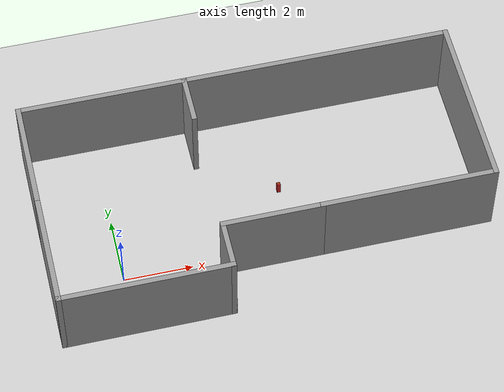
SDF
<sdf version="1.6">
 <world name="default">
  <light name="sun" type="directional">
   <pose>0 0 10 0 -0 0</pose>
   <diffuse>0.8 0.8 0.8 1</diffuse>
   <specular>0.2 0.2 0.2 1</specular>
   <attenuation>
    <range>1000</range>
    <constant>0.9</constant>
    <linear>0.01</linear>
    <quadratic>0.001</quadratic>
   </attenuation>
   <direction>-0.5 0.1 -0.9</direction>
  </light>
  <model name="ground_plane">
   <static>1</static>
   <link name="link">
    <collision name="collision">
     <geometry><plane><normal>0 0 1</normal><size>100 100</size></plane></geometry>
     <surface>
      <contact><collide_bitmask>65535</collide_bitmask></contact>
      <friction><ode><mu>100</mu><mu2>50</mu2></ode></friction>
     </surface>
    </collision>
    <visual name="visual">
     <cast_shadows>0</cast_shadows>
     <geometry><plane><normal>0 0 1</normal><size>100 100</size></plane></geometry>
     <material>
      <script><uri>file://media/materials/scripts/gazebo.material</uri><name>Gazebo/Grey</name></script>
     </material>
    </visual>
   </link>
  </model>
  <gravity>0 0 -9.8</gravity>
  <magnetic_field>6e-06 2.3e-05 -4.2e-05</magnetic_field>
  <atmosphere type="adiabatic"/>
  <physics name="default_physics" default="0" type="ode">
   <max_step_size>0.001</max_step_size>
   <real_time_factor>1</real_time_factor>
   <real_time_update_rate>1000</real_time_update_rate>
  </physics>
  <scene><ambient>0.4 0.4 0.4 1</ambient><background>0.7 0.7 0.7 1</background><shadows>1</shadows></scene>
  <spherical_coordinates>
   <surface_model>EARTH_WGS84</surface_model>
   <latitude_deg>0</latitude_deg>
   <longitude_deg>0</longitude_deg>
   <elevation>0</elevation>
   <heading_deg>0</heading_deg>
  </spherical_coordinates>
  <audio><device>default</device></audio>
  <model name="my_room.sdf">
   <link name="Wall_10">
    <pose>-1.5 -2.55 0 0 -0 1.5708</pose>
    <visual name="Wall_10_Visual">
     <pose>0 0 1.25 0 -0 0</pose>
     <geometry><box><size>1.5 0.15 2.5</size></box></geometry>
     <material>
      <script><uri>file://media/materials/scripts/gazebo.material</uri><name>Gazebo/Grey</name></script>
      <ambient>1 1 1 1</ambient>
     </material>
     <meta><layer>0</layer></meta>
    </visual>
    <collision name="Wall_10_Collision">
     <pose>0 0 1.25 0 -0 0</pose>
     <geometry><box><size>1.5 0.15 2.5</size></box></geometry>
     <surface>
      <friction>
       <ode><mu>1</mu><mu2>1</mu2><fdir1>0 0 0</fdir1><slip1>0</slip1><slip2>0</slip2></ode>
       <torsional>
        <coefficient>1</coefficient>
        <patch_radius>0</patch_radius>
        <surface_radius>0</surface_radius>
        <use_patch_radius>1</use_patch_radius>
        <ode><slip>0</slip></ode>
       </torsional>
      </friction>
      <bounce><restitution_coefficient>0</restitution_coefficient><threshold>1e+06</threshold></bounce>
      <contact>
       <collide_without_contact>0</collide_without_contact>
       <collide_without_contact_bitmask>1</collide_without_contact_bitmask>
       <collide_bitmask>1</collide_bitmask>
       <ode>
        <soft_cfm>0</soft_cfm>
        <soft_erp>0.2</soft_erp>
        <kp>1e+13</kp>
        <kd>1</kd>
        <max_vel>0.01</max_vel>
        <min_depth>0</min_depth>
       </ode>
       <bullet>
        <split_impulse>1</split_impulse>
        <split_impulse_penetration_threshold>-0.01</split_impulse_penetration_threshold>
        <soft_cfm>0</soft_cfm>
        <soft_erp>0.2</soft_erp>
        <kp>1e+13</kp>
        <kd>1</kd>
       </bullet>
      </contact>
     </surface>
    </collision>
   </link>
   <link name="Wall_11">
    <pose>-0.075 -1.875 0 0 -0 0</pose>
    <visual name="Wall_11_Visual">
     <pose>0 0 1.25 0 -0 0</pose>
     <geometry><box><size>3 0.15 2.5</size></box></geometry>
     <material>
      <script><uri>file://media/materials/scripts/gazebo.material</uri><name>Gazebo/Grey</name></script>
      <ambient>1 1 1 1</ambient>
     </material>
     <meta><layer>0</layer></meta>
    </visual>
    <collision name="Wall_11_Collision">
     <pose>0 0 1.25 0 -0 0</pose>
     <geometry><box><size>3 0.15 2.5</size></box></geometry>
     <surface>
      <friction>
       <ode><mu>1</mu><mu2>1</mu2><fdir1>0 0 0</fdir1><slip1>0</slip1><slip2>0</slip2></ode>
       <torsional>
        <coefficient>1</coefficient>
        <patch_radius>0</patch_radius>
        <surface_radius>0</surface_radius>
        <use_patch_radius>1</use_patch_radius>
        <ode><slip>0</slip></ode>
       </torsional>
      </friction>
      <bounce><restitution_coefficient>0</restitution_coefficient><threshold>1e+06</threshold></bounce>
      <contact>
       <collide_without_contact>0</collide_without_contact>
       <collide_without_contact_bitmask>1</collide_without_contact_bitmask>
       <collide_bitmask>1</collide_bitmask>
       <ode>
        <soft_cfm>0</soft_cfm>
        <soft_erp>0.2</soft_erp>
        <kp>1e+13</kp>
        <kd>1</kd>
        <max_vel>0.01</max_vel>
        <min_depth>0</min_depth>
       </ode>
       <bullet>
        <split_impulse>1</split_impulse>
        <split_impulse_penetration_threshold>-0.01</split_impulse_penetration_threshold>
        <soft_cfm>0</soft_cfm>
        <soft_erp>0.2</soft_erp>
        <kp>1e+13</kp>
        <kd>1</kd>
       </bullet>
      </contact>
     </surface>
    </collision>
   </link>
   <link name="Wall_34">
    <pose>-6.35 1.675 0 0 -0 1.5708</pose>
    <visual name="Wall_34_Visual">
     <pose>0 0 1.25 0 -0 0</pose>
     <geometry><box><size>3.25 0.15 2.5</size></box></geometry>
     <material>
      <script><uri>file://media/materials/scripts/gazebo.material</uri><name>Gazebo/Grey</name></script>
      <ambient>1 1 1 1</ambient>
     </material>
     <meta><layer>0</layer></meta>
    </visual>
    <collision name="Wall_34_Collision">
     <pose>0 0 1.25 0 -0 0</pose>
     <geometry><box><size>3.25 0.15 2.5</size></box></geometry>
     <surface>
      <friction>
       <ode><mu>1</mu><mu2>1</mu2><fdir1>0 0 0</fdir1><slip1>0</slip1><slip2>0</slip2></ode>
       <torsional>
        <coefficient>1</coefficient>
        <patch_radius>0</patch_radius>
        <surface_radius>0</surface_radius>
        <use_patch_radius>1</use_patch_radius>
        <ode><slip>0</slip></ode>
       </torsional>
      </friction>
      <bounce><restitution_coefficient>0</restitution_coefficient><threshold>1e+06</threshold></bounce>
      <contact>
       <collide_without_contact>0</collide_without_contact>
       <collide_without_contact_bitmask>1</collide_without_contact_bitmask>
       <collide_bitmask>1</collide_bitmask>
       <ode>
        <soft_cfm>0</soft_cfm>
        <soft_erp>0.2</soft_erp>
        <kp>1e+13</kp>
        <kd>1</kd>
        <max_vel>0.01</max_vel>
        <min_depth>0</min_depth>
       </ode>
       <bullet>
        <split_impulse>1</split_impulse>
        <split_impulse_penetration_threshold>-0.01</split_impulse_penetration_threshold>
        <soft_cfm>0</soft_cfm>
        <soft_erp>0.2</soft_erp>
        <kp>1e+13</kp>
        <kd>1</kd>
       </bullet>
      </contact>
     </surface>
    </collision>
   </link>
   <link name="Wall_35">
    <pose>-3.925 3.225 0 0 -0 0</pose>
    <visual name="Wall_35_Visual">
     <pose>0 0 1.25 0 -0 0</pose>
     <geometry><box><size>5 0.15 2.5</size></box></geometry>
     <material>
      <script><uri>file://media/materials/scripts/gazebo.material</uri><name>Gazebo/Grey</name></script>
      <ambient>1 1 1 1</ambient>
     </material>
     <meta><layer>0</layer></meta>
    </visual>
    <collision name="Wall_35_Collision">
     <pose>0 0 1.25 0 -0 0</pose>
     <geometry><box><size>5 0.15 2.5</size></box></geometry>
     <surface>
      <friction>
       <ode><mu>1</mu><mu2>1</mu2><fdir1>0 0 0</fdir1><slip1>0</slip1><slip2>0</slip2></ode>
       <torsional>
        <coefficient>1</coefficient>
        <patch_radius>0</patch_radius>
        <surface_radius>0</surface_radius>
        <use_patch_radius>1</use_patch_radius>
        <ode><slip>0</slip></ode>
       </torsional>
      </friction>
      <bounce><restitution_coefficient>0</restitution_coefficient><threshold>1e+06</threshold></bounce>
      <contact>
       <collide_without_contact>0</collide_without_contact>
       <collide_without_contact_bitmask>1</collide_without_contact_bitmask>
       <collide_bitmask>1</collide_bitmask>
       <ode>
        <soft_cfm>0</soft_cfm>
        <soft_erp>0.2</soft_erp>
        <kp>1e+13</kp>
        <kd>1</kd>
        <max_vel>0.01</max_vel>
        <min_depth>0</min_depth>
       </ode>
       <bullet>
        <split_impulse>1</split_impulse>
        <split_impulse_penetration_threshold>-0.01</split_impulse_penetration_threshold>
        <soft_cfm>0</soft_cfm>
        <soft_erp>0.2</soft_erp>
        <kp>1e+13</kp>
        <kd>1</kd>
       </bullet>
      </contact>
     </surface>
    </collision>
   </link>
   <link name="Wall_48">
    <pose>-1.5 2.55 0 0 0 -1.5708</pose>
    <visual name="Wall_48_Visual">
     <pose>0 0 1.25 0 -0 0</pose>
     <geometry><box><size>1.5 0.15 2.5</size></box></geometry>
     <material>
      <script><uri>file://media/materials/scripts/gazebo.material</uri><name>Gazebo/Grey</name></script>
      <ambient>1 1 1 1</ambient>
     </material>
     <meta><layer>0</layer></meta>
    </visual>
    <collision name="Wall_48_Collision">
     <pose>0 0 1.25 0 -0 0</pose>
     <geometry><box><size>1.5 0.15 2.5</size></box></geometry>
     <surface>
      <friction>
       <ode><mu>1</mu><mu2>1</mu2><fdir1>0 0 0</fdir1><slip1>0</slip1><slip2>0</slip2></ode>
       <torsional>
        <coefficient>1</coefficient>
        <patch_radius>0</patch_radius>
        <surface_radius>0</surface_radius>
        <use_patch_radius>1</use_patch_radius>
        <ode><slip>0</slip></ode>
       </torsional>
      </friction>
      <bounce><restitution_coefficient>0</restitution_coefficient><threshold>1e+06</threshold></bounce>
      <contact>
       <collide_without_contact>0</collide_without_contact>
       <collide_without_contact_bitmask>1</collide_without_contact_bitmask>
       <collide_bitmask>1</collide_bitmask>
       <ode>
        <soft_cfm>0</soft_cfm>
        <soft_erp>0.2</soft_erp>
        <kp>1e+13</kp>
        <kd>1</kd>
        <max_vel>0.01</max_vel>
        <min_depth>0</min_depth>
       </ode>
       <bullet>
        <split_impulse>1</split_impulse>
        <split_impulse_penetration_threshold>-0.01</split_impulse_penetration_threshold>
        <soft_cfm>0</soft_cfm>
        <soft_erp>0.2</soft_erp>
        <kp>1e+13</kp>
        <kd>1</kd>
       </bullet>
      </contact>
     </surface>
    </collision>
   </link>
   <link name="Wall_5">
    <pose>-3.925 -3.225 0 0 -0 0</pose>
    <visual name="Wall_5_Visual">
     <pose>0 0 1.25 0 -0 0</pose>
     <geometry><box><size>5 0.15 2.5</size></box></geometry>
     <material>
      <script><uri>file://media/materials/scripts/gazebo.material</uri><name>Gazebo/Grey</name></script>
      <ambient>1 1 1 1</ambient>
     </material>
     <meta><layer>0</layer></meta>
    </visual>
    <collision name="Wall_5_Collision">
     <pose>0 0 1.25 0 -0 0</pose>
     <geometry><box><size>5 0.15 2.5</size></box></geometry>
     <surface>
      <friction>
       <ode><mu>1</mu><mu2>1</mu2><fdir1>0 0 0</fdir1><slip1>0</slip1><slip2>0</slip2></ode>
       <torsional>
        <coefficient>1</coefficient>
        <patch_radius>0</patch_radius>
        <surface_radius>0</surface_radius>
        <use_patch_radius>1</use_patch_radius>
        <ode><slip>0</slip></ode>
       </torsional>
      </friction>
      <bounce><restitution_coefficient>0</restitution_coefficient><threshold>1e+06</threshold></bounce>
      <contact>
       <collide_without_contact>0</collide_without_contact>
       <collide_without_contact_bitmask>1</collide_without_contact_bitmask>
       <collide_bitmask>1</collide_bitmask>
       <ode>
        <soft_cfm>0</soft_cfm>
        <soft_erp>0.2</soft_erp>
        <kp>1e+13</kp>
        <kd>1</kd>
        <max_vel>0.01</max_vel>
        <min_depth>0</min_depth>
       </ode>
       <bullet>
        <split_impulse>1</split_impulse>
        <split_impulse_penetration_threshold>-0.01</split_impulse_penetration_threshold>
        <soft_cfm>0</soft_cfm>
        <soft_erp>0.2</soft_erp>
        <kp>1e+13</kp>
        <kd>1</kd>
       </bullet>
      </contact>
     </surface>
    </collision>
   </link>
   <link name="Wall_50">
    <pose>2.425 3.225 0 0 -0 0</pose>
    <visual name="Wall_50_Visual">
     <pose>0 0 1.25 0 -0 0</pose>
     <geometry><box><size>8 0.15 2.5</size></box></geometry>
     <material>
      <script><uri>file://media/materials/scripts/gazebo.material</uri><name>Gazebo/Grey</name></script>
      <ambient>1 1 1 1</ambient>
     </material>
     <meta><layer>0</layer></meta>
    </visual>
    <collision name="Wall_50_Collision">
     <pose>0 0 1.25 0 -0 0</pose>
     <geometry><box><size>8 0.15 2.5</size></box></geometry>
     <surface>
      <friction>
       <ode><mu>1</mu><mu2>1</mu2><fdir1>0 0 0</fdir1><slip1>0</slip1><slip2>0</slip2></ode>
       <torsional>
        <coefficient>1</coefficient>
        <patch_radius>0</patch_radius>
        <surface_radius>0</surface_radius>
        <use_patch_radius>1</use_patch_radius>
        <ode><slip>0</slip></ode>
       </torsional>
      </friction>
      <bounce><restitution_coefficient>0</restitution_coefficient><threshold>1e+06</threshold></bounce>
      <contact>
       <collide_without_contact>0</collide_without_contact>
       <collide_without_contact_bitmask>1</collide_without_contact_bitmask>
       <collide_bitmask>1</collide_bitmask>
       <ode>
        <soft_cfm>0</soft_cfm>
        <soft_erp>0.2</soft_erp>
        <kp>1e+13</kp>
        <kd>1</kd>
        <max_vel>0.01</max_vel>
        <min_depth>0</min_depth>
       </ode>
       <bullet>
        <split_impulse>1</split_impulse>
        <split_impulse_penetration_threshold>-0.01</split_impulse_penetration_threshold>
        <soft_cfm>0</soft_cfm>
        <soft_erp>0.2</soft_erp>
        <kp>1e+13</kp>
        <kd>1</kd>
       </bullet>
      </contact>
     </surface>
    </collision>
   </link>
   <link name="Wall_51">
    <pose>6.35 0.675 0 0 0 -1.5708</pose>
    <visual name="Wall_51_Visual">
     <pose>0 0 1.25 0 -0 0</pose>
     <geometry><box><size>5.25 0.15 2.5</size></box></geometry>
     <material>
      <script><uri>file://media/materials/scripts/gazebo.material</uri><name>Gazebo/Grey</name></script>
      <ambient>1 1 1 1</ambient>
     </material>
     <meta><layer>0</layer></meta>
    </visual>
    <collision name="Wall_51_Collision">
     <pose>0 0 1.25 0 -0 0</pose>
     <geometry><box><size>5.25 0.15 2.5</size></box></geometry>
     <surface>
      <friction>
       <ode><mu>1</mu><mu2>1</mu2><fdir1>0 0 0</fdir1><slip1>0</slip1><slip2>0</slip2></ode>
       <torsional>
        <coefficient>1</coefficient>
        <patch_radius>0</patch_radius>
        <surface_radius>0</surface_radius>
        <use_patch_radius>1</use_patch_radius>
        <ode><slip>0</slip></ode>
       </torsional>
      </friction>
      <bounce><restitution_coefficient>0</restitution_coefficient><threshold>1e+06</threshold></bounce>
      <contact>
       <collide_without_contact>0</collide_without_contact>
       <collide_without_contact_bitmask>1</collide_without_contact_bitmask>
       <collide_bitmask>1</collide_bitmask>
       <ode>
        <soft_cfm>0</soft_cfm>
        <soft_erp>0.2</soft_erp>
        <kp>1e+13</kp>
        <kd>1</kd>
        <max_vel>0.01</max_vel>
        <min_depth>0</min_depth>
       </ode>
       <bullet>
        <split_impulse>1</split_impulse>
        <split_impulse_penetration_threshold>-0.01</split_impulse_penetration_threshold>
        <soft_cfm>0</soft_cfm>
        <soft_erp>0.2</soft_erp>
        <kp>1e+13</kp>
        <kd>1</kd>
       </bullet>
      </contact>
     </surface>
    </collision>
   </link>
   <link name="Wall_52">
    <pose>3.85 -1.875 0 0 -0 3.14159</pose>
    <visual name="Wall_52_Visual">
     <pose>0 0 1.25 0 -0 0</pose>
     <geometry><box><size>5.15 0.15 2.5</size></box></geometry>
     <material>
      <script><uri>file://media/materials/scripts/gazebo.material</uri><name>Gazebo/Grey</name></script>
      <ambient>1 1 1 1</ambient>
     </material>
     <meta><layer>0</layer></meta>
    </visual>
    <collision name="Wall_52_Collision">
     <pose>0 0 1.25 0 -0 0</pose>
     <geometry><box><size>5.15 0.15 2.5</size></box></geometry>
     <surface>
      <friction>
       <ode><mu>1</mu><mu2>1</mu2><fdir1>0 0 0</fdir1><slip1>0</slip1><slip2>0</slip2></ode>
       <torsional>
        <coefficient>1</coefficient>
        <patch_radius>0</patch_radius>
        <surface_radius>0</surface_radius>
        <use_patch_radius>1</use_patch_radius>
        <ode><slip>0</slip></ode>
       </torsional>
      </friction>
      <bounce><restitution_coefficient>0</restitution_coefficient><threshold>1e+06</threshold></bounce>
      <contact>
       <collide_without_contact>0</collide_without_contact>
       <collide_without_contact_bitmask>1</collide_without_contact_bitmask>
       <collide_bitmask>1</collide_bitmask>
       <ode>
        <soft_cfm>0</soft_cfm>
        <soft_erp>0.2</soft_erp>
        <kp>1e+13</kp>
        <kd>1</kd>
        <max_vel>0.01</max_vel>
        <min_depth>0</min_depth>
       </ode>
       <bullet>
        <split_impulse>1</split_impulse>
        <split_impulse_penetration_threshold>-0.01</split_impulse_penetration_threshold>
        <soft_cfm>0</soft_cfm>
        <soft_erp>0.2</soft_erp>
        <kp>1e+13</kp>
        <kd>1</kd>
       </bullet>
      </contact>
     </surface>
    </collision>
   </link>
   <link name="Wall_7">
    <pose>-6.35 -1.55 0 0 -0 1.5708</pose>
    <visual name="Wall_7_Visual">
     <pose>0 0 1.25 0 -0 0</pose>
     <geometry><box><size>3.5 0.15 2.5</size></box></geometry>
     <material>
      <script><uri>file://media/materials/scripts/gazebo.material</uri><name>Gazebo/Grey</name></script>
      <ambient>1 1 1 1</ambient>
     </material>
     <meta><layer>0</layer></meta>
    </visual>
    <collision name="Wall_7_Collision">
     <pose>0 0 1.25 0 -0 0</pose>
     <geometry><box><size>3.5 0.15 2.5</size></box></geometry>
     <surface>
      <friction>
       <ode><mu>1</mu><mu2>1</mu2><fdir1>0 0 0</fdir1><slip1>0</slip1><slip2>0</slip2></ode>
       <torsional>
        <coefficient>1</coefficient>
        <patch_radius>0</patch_radius>
        <surface_radius>0</surface_radius>
        <use_patch_radius>1</use_patch_radius>
        <ode><slip>0</slip></ode>
       </torsional>
      </friction>
      <bounce><restitution_coefficient>0</restitution_coefficient><threshold>1e+06</threshold></bounce>
      <contact>
       <collide_without_contact>0</collide_without_contact>
       <collide_without_contact_bitmask>1</collide_without_contact_bitmask>
       <collide_bitmask>1</collide_bitmask>
       <ode>
        <soft_cfm>0</soft_cfm>
        <soft_erp>0.2</soft_erp>
        <kp>1e+13</kp>
        <kd>1</kd>
        <max_vel>0.01</max_vel>
        <min_depth>0</min_depth>
       </ode>
       <bullet>
        <split_impulse>1</split_impulse>
        <split_impulse_penetration_threshold>-0.01</split_impulse_penetration_threshold>
        <soft_cfm>0</soft_cfm>
        <soft_erp>0.2</soft_erp>
        <kp>1e+13</kp>
        <kd>1</kd>
       </bullet>
      </contact>
     </surface>
    </collision>
   </link>
   <static>1</static>
   <pose>4.33011 1.50571 0 0 -0 0</pose>
  </model>
  <model name="box_obstacle_0_0">
   <link name="link">
    <inertial>
     <mass>0.573211</mass>
     <inertia>
      <ixx>0.00496795</ixx>
      <ixy>0</ixy>
      <ixz>0</ixz>
      <iyy>0.00486656</iyy>
      <iyz>0</iyz>
      <izz>0.00123635</izz>
     </inertia>
    </inertial>
    <visual name="visual">
     <geometry><box><size>0.1 0.1 0.37</size></box></geometry>
     <material>
      <script><name>Gazebo/Red</name><uri>file://media/materials/scripts/gazebo.material</uri></script>
      <shader type="vertex"><normal_map>__default__</normal_map></shader>
      <ambient>1 0 0 1</ambient>
      <diffuse>0.7 0.7 0.7 1</diffuse>
      <specular>0.01 0.01 0.01 1</specular>
      <emissive>0 0 0 1</emissive>
     </material>
    </visual>
    <collision name="collision">
     <geometry><box><size>0.1 0.1 0.37</size></box></geometry>
     <surface>
      <friction>
       <ode><mu>0</mu><mu2>0</mu2><fdir1>0 0 0</fdir1><slip1>0</slip1><slip2>0</slip2></ode>
       <torsional>
        <coefficient>1</coefficient>
        <patch_radius>0</patch_radius>
        <surface_radius>0</surface_radius>
        <use_patch_radius>1</use_patch_radius>
        <ode><slip>0</slip></ode>
       </torsional>
      </friction>
      <bounce><restitution_coefficient>0</restitution_coefficient><threshold>1e+06</threshold></bounce>
      <contact>
       <collide_without_contact>0</collide_without_contact>
       <collide_without_contact_bitmask>1</collide_without_contact_bitmask>
       <collide_bitmask>1</collide_bitmask>
       <ode>
        <soft_cfm>0</soft_cfm>
        <soft_erp>0.2</soft_erp>
        <kp>1e+13</kp>
        <kd>1</kd>
        <max_vel>0.01</max_vel>
        <min_depth>0</min_depth>
       </ode>
       <bullet>
        <split_impulse>1</split_impulse>
        <split_impulse_penetration_threshold>-0.01</split_impulse_penetration_threshold>
        <soft_cfm>0</soft_cfm>
        <soft_erp>0.2</soft_erp>
        <kp>1e+13</kp>
        <kd>1</kd>
       </bullet>
      </contact>
     </surface>
    </collision>
   </link>
   <static>0</static>
   <pose>5 2 0.185 0 -0 0</pose>
  </model>
  <model name="tennis_ball_0">
   <link name="link">
    <inertial>
     <mass>0.0655088</mass>
     <inertia>
      <ixx>1.638e-05</ixx>
      <ixy>0</ixy>
      <ixz>0</ixz>
      <iyy>1.638e-05</iyy>
      <iyz>0</iyz>
      <izz>1.638e-05</izz>
     </inertia>
    </inertial>
    <visual name="visual">
     <geometry><sphere><radius>0.02</radius></sphere></geometry>
     <material>
      <script><name>Gazebo/Yellow</name><uri>file://media/materials/scripts/gazebo.material</uri></script>
      <shader type="vertex"><normal_map>__default__</normal_map></shader>
      <ambient>1 1 0 1</ambient>
      <diffuse>1 1 0 1</diffuse>
      <emissive>0 0 0 1</emissive>
      <specular>0.1 0.1 0.1 1</specular>
     </material>
    </visual>
    <collision name="collision">
     <geometry><sphere><radius>0.02</radius></sphere></geometry>
     <surface>
      <friction>
       <ode><mu>0</mu><mu2>0</mu2><fdir1>0 0 0</fdir1><slip1>0</slip1><slip2>0</slip2></ode>
       <torsional>
        <coefficient>1</coefficient>
        <patch_radius>0</patch_radius>
        <surface_radius>0</surface_radius>
        <use_patch_radius>1</use_patch_radius>
        <ode><slip>0</slip></ode>
       </torsional>
      </friction>
      <bounce><restitution_coefficient>0</restitution_coefficient><threshold>1e+06</threshold></bounce>
      <contact>
       <collide_without_contact>0</collide_without_contact>
       <collide_without_contact_bitmask>1</collide_without_contact_bitmask>
       <collide_bitmask>1</collide_bitmask>
       <ode>
        <soft_cfm>0</soft_cfm>
        <soft_erp>0.2</soft_erp>
        <kp>1e+13</kp>
        <kd>1</kd>
        <max_vel>0.01</max_vel>
        <min_depth>0</min_depth>
       </ode>
       <bullet>
        <split_impulse>1</split_impulse>
        <split_impulse_penetration_threshold>-0.01</split_impulse_penetration_threshold>
        <soft_cfm>0</soft_cfm>
        <soft_erp>0.2</soft_erp>
        <kp>1e+13</kp>
        <kd>1</kd>
       </bullet>
      </contact>
     </surface>
    </collision>
   </link>
   <static>0</static>
   <pose>5 2 0.39 0 -0 0</pose>
  </model>
 </world>
</sdf>
